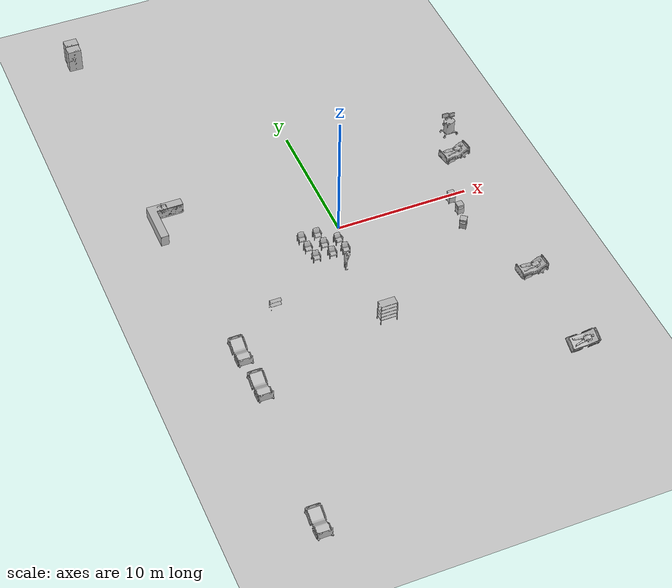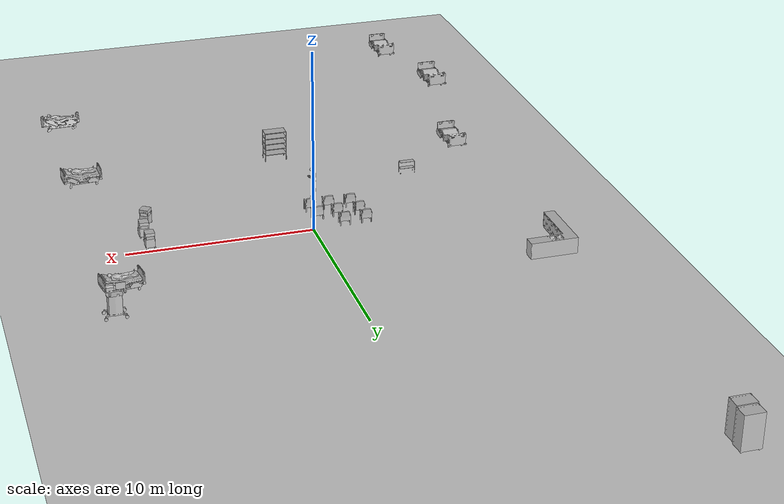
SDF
<sdf version="1.6">
 <world name="default">
  <light name="sun" type="directional">
   <pose>0 0 10 0 -0 0</pose>
   <diffuse>0.8 0.8 0.8 1</diffuse>
   <specular>0.2 0.2 0.2 1</specular>
   <attenuation>
    <range>1000</range>
    <constant>0.9</constant>
    <linear>0.01</linear>
    <quadratic>0.001</quadratic>
   </attenuation>
   <direction>-0.5 0.1 -0.9</direction>
  </light>
  <model name="ground_plane">
   <pose>1e-06 0 0 0 -0 0</pose>
   <static>1</static>
   <link name="link">
    <collision name="collision">
     <geometry><plane><normal>0 0 1</normal><size>100 100</size></plane></geometry>
     <surface>
      <contact><collide_bitmask>65535</collide_bitmask></contact>
      <friction><ode><mu>100</mu><mu2>50</mu2></ode></friction>
     </surface>
    </collision>
    <visual name="visual">
     <cast_shadows>0</cast_shadows>
     <geometry><plane><normal>0 0 1</normal><size>100 100</size></plane></geometry>
     <material>
      <script><uri>file://media/materials/scripts/gazebo.material</uri><name>Gazebo/Grey</name></script>
     </material>
    </visual>
   </link>
  </model>
  <gravity>0 0 -9.8</gravity>
  <magnetic_field>6e-06 2.3e-05 -4.2e-05</magnetic_field>
  <atmosphere type="adiabatic"/>
  <physics name="default_physics" default="0" type="ode">
   <max_step_size>0.001</max_step_size>
   <real_time_factor>1</real_time_factor>
   <real_time_update_rate>1000</real_time_update_rate>
  </physics>
  <scene><ambient>0.4 0.4 0.4 1</ambient><background>0.7 0.7 0.7 1</background><shadows>1</shadows></scene>
  <audio><device>default</device></audio>
  <spherical_coordinates>
   <surface_model>EARTH_WGS84</surface_model>
   <latitude_deg>0</latitude_deg>
   <longitude_deg>0</longitude_deg>
   <elevation>0</elevation>
   <heading_deg>0</heading_deg>
  </spherical_coordinates>
  <model name="aws_robomaker_residential_KitchenCabinet_01">
   <link name="link">
    <inertial><mass>1</mass></inertial>
    <collision name="collision">
     <geometry>
      <mesh>
       <uri>model://aws_robomaker_residential_KitchenCabinet_01/meshes/aws_KitchenCabinet_01_collision.DAE</uri>
       <scale>1 1 1</scale>
      </mesh>
     </geometry>
    </collision>
    <visual name="visual">
     <geometry>
      <mesh>
       <uri>model://aws_robomaker_residential_KitchenCabinet_01/meshes/aws_KitchenCabinet_01_visual.DAE</uri>
      </mesh>
     </geometry>
     <meta><layer>1</layer></meta>
    </visual>
   </link>
   <static>1</static>
   <pose>-10.9961 4.73846 0 0 -0 0</pose>
  </model>
  <model name="aws_robomaker_residential_Refrigerator_01">
   <link name="link">
    <inertial><mass>1</mass></inertial>
    <collision name="collision">
     <geometry>
      <mesh>
       <uri>model://aws_robomaker_residential_Refrigerator_01/meshes/aws_Refrigerator_01_collision.DAE</uri>
       <scale>1 1 1</scale>
      </mesh>
     </geometry>
    </collision>
    <visual name="visual">
     <geometry>
      <mesh>
       <uri>model://aws_robomaker_residential_Refrigerator_01/meshes/aws_Refrigerator_01_visual.DAE</uri>
      </mesh>
     </geometry>
     <meta><layer>1</layer></meta>
    </visual>
   </link>
   <static>1</static>
   <pose>-12.1019 24.6919 0 0 -0 0</pose>
  </model>
  <model name="ElderLadyPatient">
   <link name="body">
    <visual name="visual">
     <geometry><mesh><uri>model://ElderLadyPatient/meshes/ElderFemale.obj</uri></mesh></geometry>
    </visual>
    <collision name="collision">
     <geometry><mesh><uri>model://ElderLadyPatient/meshes/ElderFemale.obj</uri></mesh></geometry>
    </collision>
    <inertial>
     <inertia><ixx>1</ixx><ixy>0</ixy><ixz>0</ixz><iyy>1</iyy><iyz>0</iyz><izz>1</izz></inertia>
     <mass>1</mass>
    </inertial>
   </link>
   <pose>10.9462 -16.2838 0.197082 -0.468768 -0 -3.10954</pose>
  </model>
  <model name="ElderLadyPatient_clone">
   <link name="body">
    <visual name="visual">
     <geometry><mesh><uri>model://ElderLadyPatient/meshes/ElderFemale.obj</uri></mesh></geometry>
    </visual>
    <collision name="collision">
     <geometry><mesh><uri>model://ElderLadyPatient/meshes/ElderFemale.obj</uri></mesh></geometry>
    </collision>
    <inertial>
     <inertia><ixx>1</ixx><ixy>0</ixy><ixz>0</ixz><iyy>1</iyy><iyz>0</iyz><izz>1</izz></inertia>
     <mass>1</mass>
    </inertial>
   </link>
   <pose>10.89 3.55592 0.00166 0 -0 -2.98253</pose>
  </model>
  <model name="ElderLadyPatient_clone_clone_0_clone">
   <link name="body">
    <visual name="visual">
     <geometry><mesh><uri>model://ElderLadyPatient/meshes/ElderFemale.obj</uri></mesh></geometry>
    </visual>
    <collision name="collision">
     <geometry><mesh><uri>model://ElderLadyPatient/meshes/ElderFemale.obj</uri></mesh></geometry>
    </collision>
    <inertial>
     <inertia><ixx>1</ixx><ixy>0</ixy><ixz>0</ixz><iyy>1</iyy><iyz>0</iyz><izz>1</izz></inertia>
     <mass>1</mass>
    </inertial>
   </link>
   <pose>10.8932 -9.09941 0.00166 0 -0 -3.0787</pose>
  </model>
  <model name="MaleVisitorOnPhone">
   <static>1</static>
   <link name="body">
    <visual name="visual">
     <geometry><mesh><uri>model://MaleVisitorOnPhone/meshes/MaleVisitorStatic.obj</uri></mesh></geometry>
    </visual>
    <collision name="collision">
     <geometry><mesh><uri>model://MaleVisitorOnPhone/meshes/MaleVisitorStatic_Col.obj</uri></mesh></geometry>
    </collision>
   </link>
   <pose>-1.09102 -3.79642 0 0 -0 0</pose>
  </model>
  <model name="StorageRack">
   <link name="link">
    <visual name="visual">
     <geometry><mesh><uri>model://StorageRack/meshes/StorageRack.obj</uri></mesh></geometry>
    </visual>
    <collision name="collision">
     <geometry><mesh><uri>model://StorageRack/meshes/StorageRack.obj</uri></mesh></geometry>
    </collision>
    <inertial>
     <inertia><ixx>1</ixx><ixy>0</ixy><ixz>0</ixz><iyy>1</iyy><iyz>0</iyz><izz>1</izz></inertia>
     <mass>1</mass>
    </inertial>
   </link>
   <pose>-0.290918 -9.25785 -0 0 -0 0</pose>
  </model>
  <model name="Chair_clone">
   <link name="body">
    <pose>0 0 0 0 -0 1.5708</pose>
    <visual name="visual">
     <geometry>
      <mesh><uri>model://Chair/meshes/Chair.obj</uri><scale>0.00817 0.00817 0.00817</scale></mesh>
     </geometry>
    </visual>
    <collision name="collision">
     <geometry>
      <mesh><uri>model://Chair/meshes/Chair.obj</uri><scale>0.00817 0.00817 0.00817</scale></mesh>
     </geometry>
    </collision>
    <inertial>
     <inertia><ixx>1</ixx><ixy>0</ixy><ixz>0</ixz><iyy>1</iyy><iyz>0</iyz><izz>1</izz></inertia>
     <mass>1</mass>
    </inertial>
   </link>
   <pose>-1.46169 -2.398 -0 -2e-06 -0 -1.59283</pose>
  </model>
  <model name="Chair_clone_0">
   <link name="body">
    <pose>0 0 0 0 -0 1.5708</pose>
    <visual name="visual">
     <geometry>
      <mesh><uri>model://Chair/meshes/Chair.obj</uri><scale>0.00817 0.00817 0.00817</scale></mesh>
     </geometry>
    </visual>
    <collision name="collision">
     <geometry>
      <mesh><uri>model://Chair/meshes/Chair.obj</uri><scale>0.00817 0.00817 0.00817</scale></mesh>
     </geometry>
    </collision>
    <inertial>
     <inertia><ixx>1</ixx><ixy>0</ixy><ixz>0</ixz><iyy>1</iyy><iyz>0</iyz><izz>1</izz></inertia>
     <mass>1</mass>
    </inertial>
   </link>
   <pose>-2.66905 -2.32579 0 0 -1e-06 -1.60922</pose>
  </model>
  <model name="Chair_clone_1">
   <link name="body">
    <pose>0 0 0 0 -0 1.5708</pose>
    <visual name="visual">
     <geometry>
      <mesh><uri>model://Chair/meshes/Chair.obj</uri><scale>0.00817 0.00817 0.00817</scale></mesh>
     </geometry>
    </visual>
    <collision name="collision">
     <geometry>
      <mesh><uri>model://Chair/meshes/Chair.obj</uri><scale>0.00817 0.00817 0.00817</scale></mesh>
     </geometry>
    </collision>
    <inertial>
     <inertia><ixx>1</ixx><ixy>0</ixy><ixz>0</ixz><iyy>1</iyy><iyz>0</iyz><izz>1</izz></inertia>
     <mass>1</mass>
    </inertial>
   </link>
   <pose>-0.559289 -1.31896 -0 1e-06 -0 -1.45196</pose>
  </model>
  <model name="Chair_clone_2">
   <link name="body">
    <pose>0 0 0 0 -0 1.5708</pose>
    <visual name="visual">
     <geometry>
      <mesh><uri>model://Chair/meshes/Chair.obj</uri><scale>0.00817 0.00817 0.00817</scale></mesh>
     </geometry>
    </visual>
    <collision name="collision">
     <geometry>
      <mesh><uri>model://Chair/meshes/Chair.obj</uri><scale>0.00817 0.00817 0.00817</scale></mesh>
     </geometry>
    </collision>
    <inertial>
     <inertia><ixx>1</ixx><ixy>0</ixy><ixz>0</ixz><iyy>1</iyy><iyz>0</iyz><izz>1</izz></inertia>
     <mass>1</mass>
    </inertial>
   </link>
   <pose>-1.6855 -1.40658 -0 1e-06 -0 -1.60922</pose>
  </model>
  <model name="Chair_clone_3">
   <link name="body">
    <pose>0 0 0 0 -0 1.5708</pose>
    <visual name="visual">
     <geometry>
      <mesh><uri>model://Chair/meshes/Chair.obj</uri><scale>0.00817 0.00817 0.00817</scale></mesh>
     </geometry>
    </visual>
    <collision name="collision">
     <geometry>
      <mesh><uri>model://Chair/meshes/Chair.obj</uri><scale>0.00817 0.00817 0.00817</scale></mesh>
     </geometry>
    </collision>
    <inertial>
     <inertia><ixx>1</ixx><ixy>0</ixy><ixz>0</ixz><iyy>1</iyy><iyz>0</iyz><izz>1</izz></inertia>
     <mass>1</mass>
    </inertial>
   </link>
   <pose>-2.87788 -1.30257 0 1e-06 -0 -1.60922</pose>
  </model>
  <model name="Chair_clone_5">
   <link name="body">
    <pose>0 0 0 0 -0 1.5708</pose>
    <visual name="visual">
     <geometry>
      <mesh><uri>model://Chair/meshes/Chair.obj</uri><scale>0.00817 0.00817 0.00817</scale></mesh>
     </geometry>
    </visual>
    <collision name="collision">
     <geometry>
      <mesh><uri>model://Chair/meshes/Chair.obj</uri><scale>0.00817 0.00817 0.00817</scale></mesh>
     </geometry>
    </collision>
    <inertial>
     <inertia><ixx>1</ixx><ixy>0</ixy><ixz>0</ixz><iyy>1</iyy><iyz>0</iyz><izz>1</izz></inertia>
     <mass>1</mass>
    </inertial>
   </link>
   <pose>-1.77115 -0.309437 -0 -2e-06 -0 -1.60922</pose>
  </model>
  <model name="Chair_clone_6">
   <link name="body">
    <pose>0 0 0 0 -0 1.5708</pose>
    <visual name="visual">
     <geometry>
      <mesh><uri>model://Chair/meshes/Chair.obj</uri><scale>0.00817 0.00817 0.00817</scale></mesh>
     </geometry>
    </visual>
    <collision name="collision">
     <geometry>
      <mesh><uri>model://Chair/meshes/Chair.obj</uri><scale>0.00817 0.00817 0.00817</scale></mesh>
     </geometry>
    </collision>
    <inertial>
     <inertia><ixx>1</ixx><ixy>0</ixy><ixz>0</ixz><iyy>1</iyy><iyz>0</iyz><izz>1</izz></inertia>
     <mass>1</mass>
    </inertial>
   </link>
   <pose>-2.95363 -0.300656 -0 -2e-06 -0 -1.60922</pose>
  </model>
  <model name="Chair_clone_2_clone">
   <link name="body">
    <pose>0 0 0 0 -0 1.5708</pose>
    <visual name="visual">
     <geometry>
      <mesh><uri>model://Chair/meshes/Chair.obj</uri><scale>0.00817 0.00817 0.00817</scale></mesh>
     </geometry>
    </visual>
    <collision name="collision">
     <geometry>
      <mesh><uri>model://Chair/meshes/Chair.obj</uri><scale>0.00817 0.00817 0.00817</scale></mesh>
     </geometry>
    </collision>
    <inertial>
     <inertia><ixx>1</ixx><ixy>0</ixy><ixz>0</ixz><iyy>1</iyy><iyz>0</iyz><izz>1</izz></inertia>
     <mass>1</mass>
    </inertial>
   </link>
   <pose>-0.446855 -2.37544 -0 1e-06 -0 -1.60922</pose>
  </model>
  <model name="SurgicalTrolley">
   <static>1</static>
   <link name="body">
    <visual name="visual">
     <geometry><mesh><uri>model://SurgicalTrolley/meshes/trolley.obj</uri></mesh></geometry>
    </visual>
    <collision name="collision">
     <geometry><mesh><uri>model://SurgicalTrolley/meshes/trolley.obj</uri></mesh></geometry>
    </collision>
   </link>
   <pose>-6.9368 -5.36247 0 0 -0 0</pose>
  </model>
  <model name="BedsideTable">
   <link name="body">
    <pose>0 0 0 0 0 -1.5708</pose>
    <visual name="visual">
     <geometry><mesh><uri>model://BedsideTable/meshes/BedsideTable.obj</uri></mesh></geometry>
    </visual>
    <collision name="collision">
     <geometry><mesh><uri>model://BedsideTable/meshes/BedsideTable_Col.obj</uri></mesh></geometry>
    </collision>
    <inertial>
     <inertia><ixx>1</ixx><ixy>0</ixy><ixz>0</ixz><iyy>1</iyy><iyz>0</iyz><izz>1</izz></inertia>
     <mass>1</mass>
    </inertial>
   </link>
   <pose>8.32261 -3.23241 0.000178 0 -0 0.939024</pose>
  </model>
  <model name="BedsideTable_clone">
   <link name="body">
    <pose>0 0 0 0 0 -1.5708</pose>
    <visual name="visual">
     <geometry><mesh><uri>model://BedsideTable/meshes/BedsideTable.obj</uri></mesh></geometry>
    </visual>
    <collision name="collision">
     <geometry><mesh><uri>model://BedsideTable/meshes/BedsideTable_Col.obj</uri></mesh></geometry>
    </collision>
    <inertial>
     <inertia><ixx>1</ixx><ixy>0</ixy><ixz>0</ixz><iyy>1</iyy><iyz>0</iyz><izz>1</izz></inertia>
     <mass>1</mass>
    </inertial>
   </link>
   <pose>8.72275 -1.79467 0.009199 0 -0.03185 4e-06</pose>
  </model>
  <model name="BedsideTable_clone_0">
   <link name="body">
    <pose>0 0 0 0 0 -1.5708</pose>
    <visual name="visual">
     <geometry><mesh><uri>model://BedsideTable/meshes/BedsideTable.obj</uri></mesh></geometry>
    </visual>
    <collision name="collision">
     <geometry><mesh><uri>model://BedsideTable/meshes/BedsideTable_Col.obj</uri></mesh></geometry>
    </collision>
    <inertial>
     <inertia><ixx>1</ixx><ixy>0</ixy><ixz>0</ixz><iyy>1</iyy><iyz>0</iyz><izz>1</izz></inertia>
     <mass>1</mass>
    </inertial>
   </link>
   <pose>8.63245 -0.531547 0.00018 0 -0 0</pose>
  </model>
  <model name="AnesthesiaMachine">
   <static>1</static>
   <link name="body">
    <visual name="visual">
     <geometry><mesh><uri>model://AnesthesiaMachine/meshes/AnesthesiaMachine.obj</uri></mesh></geometry>
    </visual>
    <collision name="collision">
     <geometry><mesh><uri>model://AnesthesiaMachine/meshes/AnesthesiaMachine_Col.obj</uri></mesh></geometry>
    </collision>
   </link>
   <pose>11.5815 6.08368 0 0 -0 0</pose>
  </model>
  <model name="aws_robomaker_residential_Refrigerator_01_0">
   <link name="link">
    <inertial><mass>1</mass></inertial>
    <collision name="collision">
     <geometry>
      <mesh>
       <uri>model://aws_robomaker_residential_Refrigerator_01/meshes/aws_Refrigerator_01_collision.DAE</uri>
       <scale>1 1 1</scale>
      </mesh>
     </geometry>
    </collision>
    <visual name="visual">
     <geometry>
      <mesh>
       <uri>model://aws_robomaker_residential_Refrigerator_01/meshes/aws_Refrigerator_01_visual.DAE</uri>
      </mesh>
     </geometry>
     <meta><layer>1</layer></meta>
    </visual>
   </link>
   <static>1</static>
   <pose>-12.1599 23.9029 0 0 -0 0</pose>
  </model>
  <model name="CGMClassic">
   <static>1</static>
   <link name="body">
    <visual name="visual">
     <geometry>
      <mesh><uri>model://CGMClassic/meshes/CGMClassic.obj</uri><scale>0.01 0.01 0.01</scale></mesh>
     </geometry>
    </visual>
    <collision name="collision">
     <geometry>
      <mesh><uri>model://CGMClassic/meshes/CGMClassic.obj</uri><scale>0.01 0.01 0.01</scale></mesh>
     </geometry>
    </collision>
   </link>
   <pose>-11.2034 -23.3588 0 0 -0 0</pose>
  </model>
  <model name="CGMClassic_clone">
   <static>1</static>
   <link name="body">
    <visual name="visual">
     <geometry>
      <mesh><uri>model://CGMClassic/meshes/CGMClassic.obj</uri><scale>0.01 0.01 0.01</scale></mesh>
     </geometry>
    </visual>
    <collision name="collision">
     <geometry>
      <mesh><uri>model://CGMClassic/meshes/CGMClassic.obj</uri><scale>0.01 0.01 0.01</scale></mesh>
     </geometry>
    </collision>
   </link>
   <pose>-11.1225 -13.2625 1.87606 0 -0 0</pose>
  </model>
  <model name="CGMClassic_clone_0">
   <static>1</static>
   <link name="body">
    <visual name="visual">
     <geometry>
      <mesh><uri>model://CGMClassic/meshes/CGMClassic.obj</uri><scale>0.01 0.01 0.01</scale></mesh>
     </geometry>
    </visual>
    <collision name="collision">
     <geometry>
      <mesh><uri>model://CGMClassic/meshes/CGMClassic.obj</uri><scale>0.01 0.01 0.01</scale></mesh>
     </geometry>
    </collision>
   </link>
   <pose>-10.7443 -8.49672 0 0 -0 0</pose>
  </model>
 </world>
</sdf>
